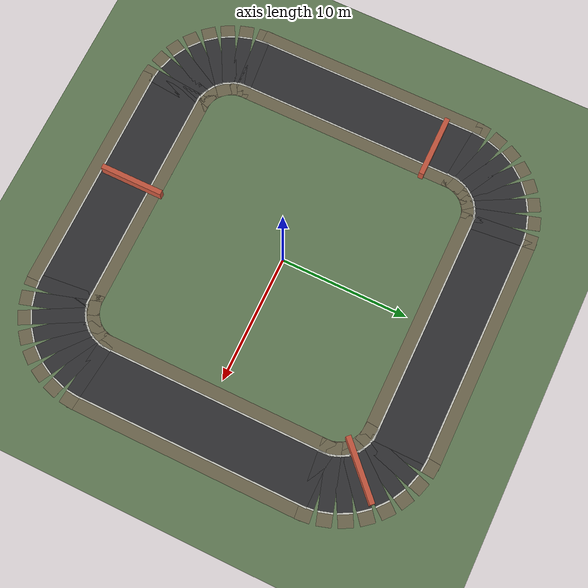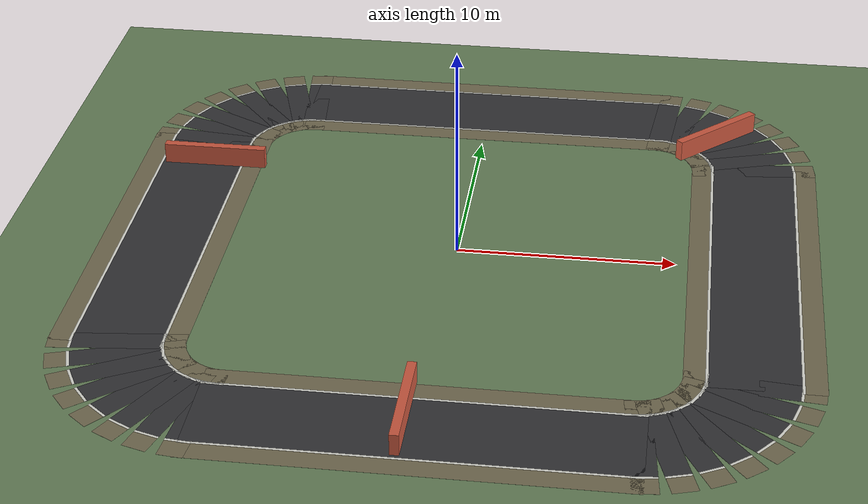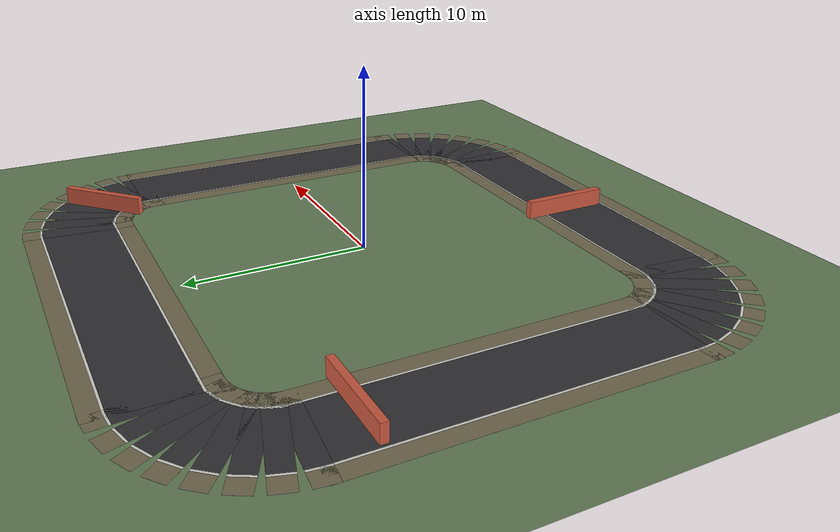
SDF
<?xml version="1.0" ?>
<sdf version="1.9">
  <world name="patrol_road_obstacles">

    <physics name="1ms" type="ignored">
      <max_step_size>0.001</max_step_size>
      <real_time_factor>1.0</real_time_factor>
    </physics>

    <plugin filename="gz-sim-physics-system"
            name="gz::sim::systems::Physics"/>
    <plugin filename="gz-sim-user-commands-system"
            name="gz::sim::systems::UserCommands"/>
    <plugin filename="gz-sim-scene-broadcaster-system"
            name="gz::sim::systems::SceneBroadcaster"/>
    <!-- Renders the gpu_lidar; needs a GL 3.3 context (llvmpipe is enough). -->
    <plugin filename="gz-sim-sensors-system"
            name="gz::sim::systems::Sensors">
      <render_engine>ogre2</render_engine>
    </plugin>
    <plugin filename="gz-sim-imu-system"
            name="gz::sim::systems::Imu"/>
    <plugin filename="gz-sim-navsat-system"
            name="gz::sim::systems::NavSat"/>

    <!-- Datum for the simulated GNSS. Matches patrol_yard.sdf, and is the
         value to pin navsat_transform's `datum` to for sim runs. -->
    <spherical_coordinates>
      <surface_model>EARTH_WGS84</surface_model>
      <world_frame_orientation>ENU</world_frame_orientation>
      <latitude_deg>-41.286460</latitude_deg>
      <longitude_deg>174.776236</longitude_deg>
      <elevation>10.0</elevation>
    </spherical_coordinates>

    <scene>
      <ambient>0.6 0.6 0.6 1</ambient>
      <background>0.6 0.75 0.9 1</background>
      <grid>false</grid>
    </scene>

    <light type="directional" name="sun">
      <cast_shadows>true</cast_shadows>
      <pose>0 0 10 0 0 0</pose>
      <diffuse>0.9 0.9 0.9 1</diffuse>
      <specular>0.2 0.2 0.2 1</specular>
      <direction>-0.5 0.2 -0.9</direction>
    </light>

    <model name="ground_plane">
      <static>true</static>
      <link name="link">
        <collision name="collision">
          <geometry>
            <plane>
              <normal>0 0 1</normal>
              <size>200 200</size>
            </plane>
          </geometry>
          <surface>
            <friction>
              <ode>
                <mu>1.0</mu>
                <mu2>1.0</mu2>
              </ode>
            </friction>
          </surface>
        </collision>
        <visual name="visual">
          <geometry>
            <plane>
              <normal>0 0 1</normal>
              <size>200 200</size>
            </plane>
          </geometry>
          <material>
            <ambient>0.35 0.4 0.3 1</ambient>
            <diffuse>0.4 0.5 0.35 1</diffuse>
          </material>
        </visual>
      </link>
    </model>

    <!-- Painted road surface: visual only, no collision. -->
    <model name="patrol_road">
      <static>true</static>
      <link name="surface">
        <visual name="lane_000">
          <pose>0.0000 -13.5730 0.0050 0 0 0.000000</pose>
          <geometry><box><size>18.5677 4.0000 0.002</size></box></geometry>
          <material>
            <ambient>0.20 0.20 0.21 1</ambient>
            <diffuse>0.20 0.20 0.21 1</diffuse>
          </material>
        </visual>
        <visual name="lane_001">
          <pose>9.0631 -13.5489 0.0050 0 0 0.098175</pose>
          <geometry><box><size>1.1103 4.0000 0.002</size></box></geometry>
          <material>
            <ambient>0.20 0.20 0.21 1</ambient>
            <diffuse>0.20 0.20 0.21 1</diffuse>
          </material>
        </visual>
        <visual name="lane_002">
          <pose>10.0244 -13.3577 0.0050 0 0 0.294524</pose>
          <geometry><box><size>1.1103 4.0000 0.002</size></box></geometry>
          <material>
            <ambient>0.20 0.20 0.21 1</ambient>
            <diffuse>0.20 0.20 0.21 1</diffuse>
          </material>
        </visual>
        <visual name="lane_003">
          <pose>10.9300 -12.9826 0.0050 0 0 0.490874</pose>
          <geometry><box><size>1.1103 4.0000 0.002</size></box></geometry>
          <material>
            <ambient>0.20 0.20 0.21 1</ambient>
            <diffuse>0.20 0.20 0.21 1</diffuse>
          </material>
        </visual>
        <visual name="lane_004">
          <pose>11.7450 -12.4381 0.0050 0 0 0.687223</pose>
          <geometry><box><size>1.1103 4.0000 0.002</size></box></geometry>
          <material>
            <ambient>0.20 0.20 0.21 1</ambient>
            <diffuse>0.20 0.20 0.21 1</diffuse>
          </material>
        </visual>
        <visual name="lane_005">
          <pose>12.4381 -11.7450 0.0050 0 0 0.883573</pose>
          <geometry><box><size>1.1103 4.0000 0.002</size></box></geometry>
          <material>
            <ambient>0.20 0.20 0.21 1</ambient>
            <diffuse>0.20 0.20 0.21 1</diffuse>
          </material>
        </visual>
        <visual name="lane_006">
          <pose>12.9826 -10.9300 0.0050 0 0 1.079922</pose>
          <geometry><box><size>1.1103 4.0000 0.002</size></box></geometry>
          <material>
            <ambient>0.20 0.20 0.21 1</ambient>
            <diffuse>0.20 0.20 0.21 1</diffuse>
          </material>
        </visual>
        <visual name="lane_007">
          <pose>13.3577 -10.0244 0.0050 0 0 1.276272</pose>
          <geometry><box><size>1.1103 4.0000 0.002</size></box></geometry>
          <material>
            <ambient>0.20 0.20 0.21 1</ambient>
            <diffuse>0.20 0.20 0.21 1</diffuse>
          </material>
        </visual>
        <visual name="lane_008">
          <pose>13.5489 -9.0631 0.0050 0 0 1.472622</pose>
          <geometry><box><size>1.1103 4.0000 0.002</size></box></geometry>
          <material>
            <ambient>0.20 0.20 0.21 1</ambient>
            <diffuse>0.20 0.20 0.21 1</diffuse>
          </material>
        </visual>
        <visual name="lane_009">
          <pose>13.5730 0.0000 0.0050 0 0 1.570796</pose>
          <geometry><box><size>18.5677 4.0000 0.002</size></box></geometry>
          <material>
            <ambient>0.20 0.20 0.21 1</ambient>
            <diffuse>0.20 0.20 0.21 1</diffuse>
          </material>
        </visual>
        <visual name="lane_010">
          <pose>13.5489 9.0631 0.0050 0 0 1.668971</pose>
          <geometry><box><size>1.1103 4.0000 0.002</size></box></geometry>
          <material>
            <ambient>0.20 0.20 0.21 1</ambient>
            <diffuse>0.20 0.20 0.21 1</diffuse>
          </material>
        </visual>
        <visual name="lane_011">
          <pose>13.3577 10.0244 0.0050 0 0 1.865321</pose>
          <geometry><box><size>1.1103 4.0000 0.002</size></box></geometry>
          <material>
            <ambient>0.20 0.20 0.21 1</ambient>
            <diffuse>0.20 0.20 0.21 1</diffuse>
          </material>
        </visual>
        <visual name="lane_012">
          <pose>12.9826 10.9300 0.0050 0 0 2.061670</pose>
          <geometry><box><size>1.1103 4.0000 0.002</size></box></geometry>
          <material>
            <ambient>0.20 0.20 0.21 1</ambient>
            <diffuse>0.20 0.20 0.21 1</diffuse>
          </material>
        </visual>
        <visual name="lane_013">
          <pose>12.4381 11.7450 0.0050 0 0 2.258020</pose>
          <geometry><box><size>1.1103 4.0000 0.002</size></box></geometry>
          <material>
            <ambient>0.20 0.20 0.21 1</ambient>
            <diffuse>0.20 0.20 0.21 1</diffuse>
          </material>
        </visual>
        <visual name="lane_014">
          <pose>11.7450 12.4381 0.0050 0 0 2.454369</pose>
          <geometry><box><size>1.1103 4.0000 0.002</size></box></geometry>
          <material>
            <ambient>0.20 0.20 0.21 1</ambient>
            <diffuse>0.20 0.20 0.21 1</diffuse>
          </material>
        </visual>
        <visual name="lane_015">
          <pose>10.9300 12.9826 0.0050 0 0 2.650719</pose>
          <geometry><box><size>1.1103 4.0000 0.002</size></box></geometry>
          <material>
            <ambient>0.20 0.20 0.21 1</ambient>
            <diffuse>0.20 0.20 0.21 1</diffuse>
          </material>
        </visual>
        <visual name="lane_016">
          <pose>10.0244 13.3577 0.0050 0 0 2.847068</pose>
          <geometry><box><size>1.1103 4.0000 0.002</size></box></geometry>
          <material>
            <ambient>0.20 0.20 0.21 1</ambient>
            <diffuse>0.20 0.20 0.21 1</diffuse>
          </material>
        </visual>
        <visual name="lane_017">
          <pose>9.0631 13.5489 0.0050 0 0 3.043418</pose>
          <geometry><box><size>1.1103 4.0000 0.002</size></box></geometry>
          <material>
            <ambient>0.20 0.20 0.21 1</ambient>
            <diffuse>0.20 0.20 0.21 1</diffuse>
          </material>
        </visual>
        <visual name="lane_018">
          <pose>0.0000 13.5730 0.0050 0 0 3.141593</pose>
          <geometry><box><size>18.5677 4.0000 0.002</size></box></geometry>
          <material>
            <ambient>0.20 0.20 0.21 1</ambient>
            <diffuse>0.20 0.20 0.21 1</diffuse>
          </material>
        </visual>
        <visual name="lane_019">
          <pose>-9.0631 13.5489 0.0050 0 0 -3.043418</pose>
          <geometry><box><size>1.1103 4.0000 0.002</size></box></geometry>
          <material>
            <ambient>0.20 0.20 0.21 1</ambient>
            <diffuse>0.20 0.20 0.21 1</diffuse>
          </material>
        </visual>
        <visual name="lane_020">
          <pose>-10.0244 13.3577 0.0050 0 0 -2.847068</pose>
          <geometry><box><size>1.1103 4.0000 0.002</size></box></geometry>
          <material>
            <ambient>0.20 0.20 0.21 1</ambient>
            <diffuse>0.20 0.20 0.21 1</diffuse>
          </material>
        </visual>
        <visual name="lane_021">
          <pose>-10.9300 12.9826 0.0050 0 0 -2.650719</pose>
          <geometry><box><size>1.1103 4.0000 0.002</size></box></geometry>
          <material>
            <ambient>0.20 0.20 0.21 1</ambient>
            <diffuse>0.20 0.20 0.21 1</diffuse>
          </material>
        </visual>
        <visual name="lane_022">
          <pose>-11.7450 12.4381 0.0050 0 0 -2.454369</pose>
          <geometry><box><size>1.1103 4.0000 0.002</size></box></geometry>
          <material>
            <ambient>0.20 0.20 0.21 1</ambient>
            <diffuse>0.20 0.20 0.21 1</diffuse>
          </material>
        </visual>
        <visual name="lane_023">
          <pose>-12.4381 11.7450 0.0050 0 0 -2.258020</pose>
          <geometry><box><size>1.1103 4.0000 0.002</size></box></geometry>
          <material>
            <ambient>0.20 0.20 0.21 1</ambient>
            <diffuse>0.20 0.20 0.21 1</diffuse>
          </material>
        </visual>
        <visual name="lane_024">
          <pose>-12.9826 10.9300 0.0050 0 0 -2.061670</pose>
          <geometry><box><size>1.1103 4.0000 0.002</size></box></geometry>
          <material>
            <ambient>0.20 0.20 0.21 1</ambient>
            <diffuse>0.20 0.20 0.21 1</diffuse>
          </material>
        </visual>
        <visual name="lane_025">
          <pose>-13.3577 10.0244 0.0050 0 0 -1.865321</pose>
          <geometry><box><size>1.1103 4.0000 0.002</size></box></geometry>
          <material>
            <ambient>0.20 0.20 0.21 1</ambient>
            <diffuse>0.20 0.20 0.21 1</diffuse>
          </material>
        </visual>
        <visual name="lane_026">
          <pose>-13.5489 9.0631 0.0050 0 0 -1.668971</pose>
          <geometry><box><size>1.1103 4.0000 0.002</size></box></geometry>
          <material>
            <ambient>0.20 0.20 0.21 1</ambient>
            <diffuse>0.20 0.20 0.21 1</diffuse>
          </material>
        </visual>
        <visual name="lane_027">
          <pose>-13.5730 0.0000 0.0050 0 0 -1.570796</pose>
          <geometry><box><size>18.5677 4.0000 0.002</size></box></geometry>
          <material>
            <ambient>0.20 0.20 0.21 1</ambient>
            <diffuse>0.20 0.20 0.21 1</diffuse>
          </material>
        </visual>
        <visual name="lane_028">
          <pose>-13.5489 -9.0631 0.0050 0 0 -1.472622</pose>
          <geometry><box><size>1.1103 4.0000 0.002</size></box></geometry>
          <material>
            <ambient>0.20 0.20 0.21 1</ambient>
            <diffuse>0.20 0.20 0.21 1</diffuse>
          </material>
        </visual>
        <visual name="lane_029">
          <pose>-13.3577 -10.0244 0.0050 0 0 -1.276272</pose>
          <geometry><box><size>1.1103 4.0000 0.002</size></box></geometry>
          <material>
            <ambient>0.20 0.20 0.21 1</ambient>
            <diffuse>0.20 0.20 0.21 1</diffuse>
          </material>
        </visual>
        <visual name="lane_030">
          <pose>-12.9826 -10.9300 0.0050 0 0 -1.079922</pose>
          <geometry><box><size>1.1103 4.0000 0.002</size></box></geometry>
          <material>
            <ambient>0.20 0.20 0.21 1</ambient>
            <diffuse>0.20 0.20 0.21 1</diffuse>
          </material>
        </visual>
        <visual name="lane_031">
          <pose>-12.4381 -11.7450 0.0050 0 0 -0.883573</pose>
          <geometry><box><size>1.1103 4.0000 0.002</size></box></geometry>
          <material>
            <ambient>0.20 0.20 0.21 1</ambient>
            <diffuse>0.20 0.20 0.21 1</diffuse>
          </material>
        </visual>
        <visual name="lane_032">
          <pose>-11.7450 -12.4381 0.0050 0 0 -0.687223</pose>
          <geometry><box><size>1.1103 4.0000 0.002</size></box></geometry>
          <material>
            <ambient>0.20 0.20 0.21 1</ambient>
            <diffuse>0.20 0.20 0.21 1</diffuse>
          </material>
        </visual>
        <visual name="lane_033">
          <pose>-10.9300 -12.9826 0.0050 0 0 -0.490874</pose>
          <geometry><box><size>1.1103 4.0000 0.002</size></box></geometry>
          <material>
            <ambient>0.20 0.20 0.21 1</ambient>
            <diffuse>0.20 0.20 0.21 1</diffuse>
          </material>
        </visual>
        <visual name="lane_034">
          <pose>-10.0244 -13.3577 0.0050 0 0 -0.294524</pose>
          <geometry><box><size>1.1103 4.0000 0.002</size></box></geometry>
          <material>
            <ambient>0.20 0.20 0.21 1</ambient>
            <diffuse>0.20 0.20 0.21 1</diffuse>
          </material>
        </visual>
        <visual name="lane_035">
          <pose>-9.0631 -13.5489 0.0050 0 0 -0.098175</pose>
          <geometry><box><size>1.1103 4.0000 0.002</size></box></geometry>
          <material>
            <ambient>0.20 0.20 0.21 1</ambient>
            <diffuse>0.20 0.20 0.21 1</diffuse>
          </material>
        </visual>
        <visual name="shoulder_left_000">
          <pose>0.0000 -11.0730 0.0040 0 0 0.000000</pose>
          <geometry><box><size>18.5677 1.0000 0.002</size></box></geometry>
          <material>
            <ambient>0.45 0.42 0.32 1</ambient>
            <diffuse>0.45 0.42 0.32 1</diffuse>
          </material>
        </visual>
        <visual name="shoulder_left_001">
          <pose>8.8181 -11.0610 0.0040 0 0 0.098175</pose>
          <geometry><box><size>1.1103 1.0000 0.002</size></box></geometry>
          <material>
            <ambient>0.45 0.42 0.32 1</ambient>
            <diffuse>0.45 0.42 0.32 1</diffuse>
          </material>
        </visual>
        <visual name="shoulder_left_002">
          <pose>9.2987 -10.9654 0.0040 0 0 0.294524</pose>
          <geometry><box><size>1.1103 1.0000 0.002</size></box></geometry>
          <material>
            <ambient>0.45 0.42 0.32 1</ambient>
            <diffuse>0.45 0.42 0.32 1</diffuse>
          </material>
        </visual>
        <visual name="shoulder_left_003">
          <pose>9.7515 -10.7778 0.0040 0 0 0.490874</pose>
          <geometry><box><size>1.1103 1.0000 0.002</size></box></geometry>
          <material>
            <ambient>0.45 0.42 0.32 1</ambient>
            <diffuse>0.45 0.42 0.32 1</diffuse>
          </material>
        </visual>
        <visual name="shoulder_left_004">
          <pose>10.1590 -10.5055 0.0040 0 0 0.687223</pose>
          <geometry><box><size>1.1103 1.0000 0.002</size></box></geometry>
          <material>
            <ambient>0.45 0.42 0.32 1</ambient>
            <diffuse>0.45 0.42 0.32 1</diffuse>
          </material>
        </visual>
        <visual name="shoulder_left_005">
          <pose>10.5055 -10.1590 0.0040 0 0 0.883573</pose>
          <geometry><box><size>1.1103 1.0000 0.002</size></box></geometry>
          <material>
            <ambient>0.45 0.42 0.32 1</ambient>
            <diffuse>0.45 0.42 0.32 1</diffuse>
          </material>
        </visual>
        <visual name="shoulder_left_006">
          <pose>10.7778 -9.7515 0.0040 0 0 1.079922</pose>
          <geometry><box><size>1.1103 1.0000 0.002</size></box></geometry>
          <material>
            <ambient>0.45 0.42 0.32 1</ambient>
            <diffuse>0.45 0.42 0.32 1</diffuse>
          </material>
        </visual>
        <visual name="shoulder_left_007">
          <pose>10.9654 -9.2987 0.0040 0 0 1.276272</pose>
          <geometry><box><size>1.1103 1.0000 0.002</size></box></geometry>
          <material>
            <ambient>0.45 0.42 0.32 1</ambient>
            <diffuse>0.45 0.42 0.32 1</diffuse>
          </material>
        </visual>
        <visual name="shoulder_left_008">
          <pose>11.0610 -8.8181 0.0040 0 0 1.472622</pose>
          <geometry><box><size>1.1103 1.0000 0.002</size></box></geometry>
          <material>
            <ambient>0.45 0.42 0.32 1</ambient>
            <diffuse>0.45 0.42 0.32 1</diffuse>
          </material>
        </visual>
        <visual name="shoulder_left_009">
          <pose>11.0730 0.0000 0.0040 0 0 1.570796</pose>
          <geometry><box><size>18.5677 1.0000 0.002</size></box></geometry>
          <material>
            <ambient>0.45 0.42 0.32 1</ambient>
            <diffuse>0.45 0.42 0.32 1</diffuse>
          </material>
        </visual>
        <visual name="shoulder_left_010">
          <pose>11.0610 8.8181 0.0040 0 0 1.668971</pose>
          <geometry><box><size>1.1103 1.0000 0.002</size></box></geometry>
          <material>
            <ambient>0.45 0.42 0.32 1</ambient>
            <diffuse>0.45 0.42 0.32 1</diffuse>
          </material>
        </visual>
        <visual name="shoulder_left_011">
          <pose>10.9654 9.2987 0.0040 0 0 1.865321</pose>
          <geometry><box><size>1.1103 1.0000 0.002</size></box></geometry>
          <material>
            <ambient>0.45 0.42 0.32 1</ambient>
            <diffuse>0.45 0.42 0.32 1</diffuse>
          </material>
        </visual>
        <visual name="shoulder_left_012">
          <pose>10.7778 9.7515 0.0040 0 0 2.061670</pose>
          <geometry><box><size>1.1103 1.0000 0.002</size></box></geometry>
          <material>
            <ambient>0.45 0.42 0.32 1</ambient>
            <diffuse>0.45 0.42 0.32 1</diffuse>
          </material>
        </visual>
        <visual name="shoulder_left_013">
          <pose>10.5055 10.1590 0.0040 0 0 2.258020</pose>
          <geometry><box><size>1.1103 1.0000 0.002</size></box></geometry>
          <material>
            <ambient>0.45 0.42 0.32 1</ambient>
            <diffuse>0.45 0.42 0.32 1</diffuse>
          </material>
        </visual>
        <visual name="shoulder_left_014">
          <pose>10.1590 10.5055 0.0040 0 0 2.454369</pose>
          <geometry><box><size>1.1103 1.0000 0.002</size></box></geometry>
          <material>
            <ambient>0.45 0.42 0.32 1</ambient>
            <diffuse>0.45 0.42 0.32 1</diffuse>
          </material>
        </visual>
        <visual name="shoulder_left_015">
          <pose>9.7515 10.7778 0.0040 0 0 2.650719</pose>
          <geometry><box><size>1.1103 1.0000 0.002</size></box></geometry>
          <material>
            <ambient>0.45 0.42 0.32 1</ambient>
            <diffuse>0.45 0.42 0.32 1</diffuse>
          </material>
        </visual>
        <visual name="shoulder_left_016">
          <pose>9.2987 10.9654 0.0040 0 0 2.847068</pose>
          <geometry><box><size>1.1103 1.0000 0.002</size></box></geometry>
          <material>
            <ambient>0.45 0.42 0.32 1</ambient>
            <diffuse>0.45 0.42 0.32 1</diffuse>
          </material>
        </visual>
        <visual name="shoulder_left_017">
          <pose>8.8181 11.0610 0.0040 0 0 3.043418</pose>
          <geometry><box><size>1.1103 1.0000 0.002</size></box></geometry>
          <material>
            <ambient>0.45 0.42 0.32 1</ambient>
            <diffuse>0.45 0.42 0.32 1</diffuse>
          </material>
        </visual>
        <visual name="shoulder_left_018">
          <pose>-0.0000 11.0730 0.0040 0 0 3.141593</pose>
          <geometry><box><size>18.5677 1.0000 0.002</size></box></geometry>
          <material>
            <ambient>0.45 0.42 0.32 1</ambient>
            <diffuse>0.45 0.42 0.32 1</diffuse>
          </material>
        </visual>
        <visual name="shoulder_left_019">
          <pose>-8.8181 11.0610 0.0040 0 0 -3.043418</pose>
          <geometry><box><size>1.1103 1.0000 0.002</size></box></geometry>
          <material>
            <ambient>0.45 0.42 0.32 1</ambient>
            <diffuse>0.45 0.42 0.32 1</diffuse>
          </material>
        </visual>
        <visual name="shoulder_left_020">
          <pose>-9.2987 10.9654 0.0040 0 0 -2.847068</pose>
          <geometry><box><size>1.1103 1.0000 0.002</size></box></geometry>
          <material>
            <ambient>0.45 0.42 0.32 1</ambient>
            <diffuse>0.45 0.42 0.32 1</diffuse>
          </material>
        </visual>
        <visual name="shoulder_left_021">
          <pose>-9.7515 10.7778 0.0040 0 0 -2.650719</pose>
          <geometry><box><size>1.1103 1.0000 0.002</size></box></geometry>
          <material>
            <ambient>0.45 0.42 0.32 1</ambient>
            <diffuse>0.45 0.42 0.32 1</diffuse>
          </material>
        </visual>
        <visual name="shoulder_left_022">
          <pose>-10.1590 10.5055 0.0040 0 0 -2.454369</pose>
          <geometry><box><size>1.1103 1.0000 0.002</size></box></geometry>
          <material>
            <ambient>0.45 0.42 0.32 1</ambient>
            <diffuse>0.45 0.42 0.32 1</diffuse>
          </material>
        </visual>
        <visual name="shoulder_left_023">
          <pose>-10.5055 10.1590 0.0040 0 0 -2.258020</pose>
          <geometry><box><size>1.1103 1.0000 0.002</size></box></geometry>
          <material>
            <ambient>0.45 0.42 0.32 1</ambient>
            <diffuse>0.45 0.42 0.32 1</diffuse>
          </material>
        </visual>
        <visual name="shoulder_left_024">
          <pose>-10.7778 9.7515 0.0040 0 0 -2.061670</pose>
          <geometry><box><size>1.1103 1.0000 0.002</size></box></geometry>
          <material>
            <ambient>0.45 0.42 0.32 1</ambient>
            <diffuse>0.45 0.42 0.32 1</diffuse>
          </material>
        </visual>
        <visual name="shoulder_left_025">
          <pose>-10.9654 9.2987 0.0040 0 0 -1.865321</pose>
          <geometry><box><size>1.1103 1.0000 0.002</size></box></geometry>
          <material>
            <ambient>0.45 0.42 0.32 1</ambient>
            <diffuse>0.45 0.42 0.32 1</diffuse>
          </material>
        </visual>
        <visual name="shoulder_left_026">
          <pose>-11.0610 8.8181 0.0040 0 0 -1.668971</pose>
          <geometry><box><size>1.1103 1.0000 0.002</size></box></geometry>
          <material>
            <ambient>0.45 0.42 0.32 1</ambient>
            <diffuse>0.45 0.42 0.32 1</diffuse>
          </material>
        </visual>
        <visual name="shoulder_left_027">
          <pose>-11.0730 0.0000 0.0040 0 0 -1.570796</pose>
          <geometry><box><size>18.5677 1.0000 0.002</size></box></geometry>
          <material>
            <ambient>0.45 0.42 0.32 1</ambient>
            <diffuse>0.45 0.42 0.32 1</diffuse>
          </material>
        </visual>
        <visual name="shoulder_left_028">
          <pose>-11.0610 -8.8181 0.0040 0 0 -1.472622</pose>
          <geometry><box><size>1.1103 1.0000 0.002</size></box></geometry>
          <material>
            <ambient>0.45 0.42 0.32 1</ambient>
            <diffuse>0.45 0.42 0.32 1</diffuse>
          </material>
        </visual>
        <visual name="shoulder_left_029">
          <pose>-10.9654 -9.2987 0.0040 0 0 -1.276272</pose>
          <geometry><box><size>1.1103 1.0000 0.002</size></box></geometry>
          <material>
            <ambient>0.45 0.42 0.32 1</ambient>
            <diffuse>0.45 0.42 0.32 1</diffuse>
          </material>
        </visual>
        <visual name="shoulder_left_030">
          <pose>-10.7778 -9.7515 0.0040 0 0 -1.079922</pose>
          <geometry><box><size>1.1103 1.0000 0.002</size></box></geometry>
          <material>
            <ambient>0.45 0.42 0.32 1</ambient>
            <diffuse>0.45 0.42 0.32 1</diffuse>
          </material>
        </visual>
        <visual name="shoulder_left_031">
          <pose>-10.5055 -10.1590 0.0040 0 0 -0.883573</pose>
          <geometry><box><size>1.1103 1.0000 0.002</size></box></geometry>
          <material>
            <ambient>0.45 0.42 0.32 1</ambient>
            <diffuse>0.45 0.42 0.32 1</diffuse>
          </material>
        </visual>
        <visual name="shoulder_left_032">
          <pose>-10.1590 -10.5055 0.0040 0 0 -0.687223</pose>
          <geometry><box><size>1.1103 1.0000 0.002</size></box></geometry>
          <material>
            <ambient>0.45 0.42 0.32 1</ambient>
            <diffuse>0.45 0.42 0.32 1</diffuse>
          </material>
        </visual>
        <visual name="shoulder_left_033">
          <pose>-9.7515 -10.7778 0.0040 0 0 -0.490874</pose>
          <geometry><box><size>1.1103 1.0000 0.002</size></box></geometry>
          <material>
            <ambient>0.45 0.42 0.32 1</ambient>
            <diffuse>0.45 0.42 0.32 1</diffuse>
          </material>
        </visual>
        <visual name="shoulder_left_034">
          <pose>-9.2987 -10.9654 0.0040 0 0 -0.294524</pose>
          <geometry><box><size>1.1103 1.0000 0.002</size></box></geometry>
          <material>
            <ambient>0.45 0.42 0.32 1</ambient>
            <diffuse>0.45 0.42 0.32 1</diffuse>
          </material>
        </visual>
        <visual name="shoulder_left_035">
          <pose>-8.8181 -11.0610 0.0040 0 0 -0.098175</pose>
          <geometry><box><size>1.1103 1.0000 0.002</size></box></geometry>
          <material>
            <ambient>0.45 0.42 0.32 1</ambient>
            <diffuse>0.45 0.42 0.32 1</diffuse>
          </material>
        </visual>
        <visual name="shoulder_right_000">
          <pose>0.0000 -16.0730 0.0040 0 0 0.000000</pose>
          <geometry><box><size>18.5677 1.0000 0.002</size></box></geometry>
          <material>
            <ambient>0.45 0.42 0.32 1</ambient>
            <diffuse>0.45 0.42 0.32 1</diffuse>
          </material>
        </visual>
        <visual name="shoulder_right_001">
          <pose>9.3081 -16.0369 0.0040 0 0 0.098175</pose>
          <geometry><box><size>1.1103 1.0000 0.002</size></box></geometry>
          <material>
            <ambient>0.45 0.42 0.32 1</ambient>
            <diffuse>0.45 0.42 0.32 1</diffuse>
          </material>
        </visual>
        <visual name="shoulder_right_002">
          <pose>10.7501 -15.7501 0.0040 0 0 0.294524</pose>
          <geometry><box><size>1.1103 1.0000 0.002</size></box></geometry>
          <material>
            <ambient>0.45 0.42 0.32 1</ambient>
            <diffuse>0.45 0.42 0.32 1</diffuse>
          </material>
        </visual>
        <visual name="shoulder_right_003">
          <pose>12.1085 -15.1874 0.0040 0 0 0.490874</pose>
          <geometry><box><size>1.1103 1.0000 0.002</size></box></geometry>
          <material>
            <ambient>0.45 0.42 0.32 1</ambient>
            <diffuse>0.45 0.42 0.32 1</diffuse>
          </material>
        </visual>
        <visual name="shoulder_right_004">
          <pose>13.3310 -14.3706 0.0040 0 0 0.687223</pose>
          <geometry><box><size>1.1103 1.0000 0.002</size></box></geometry>
          <material>
            <ambient>0.45 0.42 0.32 1</ambient>
            <diffuse>0.45 0.42 0.32 1</diffuse>
          </material>
        </visual>
        <visual name="shoulder_right_005">
          <pose>14.3706 -13.3310 0.0040 0 0 0.883573</pose>
          <geometry><box><size>1.1103 1.0000 0.002</size></box></geometry>
          <material>
            <ambient>0.45 0.42 0.32 1</ambient>
            <diffuse>0.45 0.42 0.32 1</diffuse>
          </material>
        </visual>
        <visual name="shoulder_right_006">
          <pose>15.1874 -12.1085 0.0040 0 0 1.079922</pose>
          <geometry><box><size>1.1103 1.0000 0.002</size></box></geometry>
          <material>
            <ambient>0.45 0.42 0.32 1</ambient>
            <diffuse>0.45 0.42 0.32 1</diffuse>
          </material>
        </visual>
        <visual name="shoulder_right_007">
          <pose>15.7501 -10.7501 0.0040 0 0 1.276272</pose>
          <geometry><box><size>1.1103 1.0000 0.002</size></box></geometry>
          <material>
            <ambient>0.45 0.42 0.32 1</ambient>
            <diffuse>0.45 0.42 0.32 1</diffuse>
          </material>
        </visual>
        <visual name="shoulder_right_008">
          <pose>16.0369 -9.3081 0.0040 0 0 1.472622</pose>
          <geometry><box><size>1.1103 1.0000 0.002</size></box></geometry>
          <material>
            <ambient>0.45 0.42 0.32 1</ambient>
            <diffuse>0.45 0.42 0.32 1</diffuse>
          </material>
        </visual>
        <visual name="shoulder_right_009">
          <pose>16.0730 -0.0000 0.0040 0 0 1.570796</pose>
          <geometry><box><size>18.5677 1.0000 0.002</size></box></geometry>
          <material>
            <ambient>0.45 0.42 0.32 1</ambient>
            <diffuse>0.45 0.42 0.32 1</diffuse>
          </material>
        </visual>
        <visual name="shoulder_right_010">
          <pose>16.0369 9.3081 0.0040 0 0 1.668971</pose>
          <geometry><box><size>1.1103 1.0000 0.002</size></box></geometry>
          <material>
            <ambient>0.45 0.42 0.32 1</ambient>
            <diffuse>0.45 0.42 0.32 1</diffuse>
          </material>
        </visual>
        <visual name="shoulder_right_011">
          <pose>15.7501 10.7501 0.0040 0 0 1.865321</pose>
          <geometry><box><size>1.1103 1.0000 0.002</size></box></geometry>
          <material>
            <ambient>0.45 0.42 0.32 1</ambient>
            <diffuse>0.45 0.42 0.32 1</diffuse>
          </material>
        </visual>
        <visual name="shoulder_right_012">
          <pose>15.1874 12.1085 0.0040 0 0 2.061670</pose>
          <geometry><box><size>1.1103 1.0000 0.002</size></box></geometry>
          <material>
            <ambient>0.45 0.42 0.32 1</ambient>
            <diffuse>0.45 0.42 0.32 1</diffuse>
          </material>
        </visual>
        <visual name="shoulder_right_013">
          <pose>14.3706 13.3310 0.0040 0 0 2.258020</pose>
          <geometry><box><size>1.1103 1.0000 0.002</size></box></geometry>
          <material>
            <ambient>0.45 0.42 0.32 1</ambient>
            <diffuse>0.45 0.42 0.32 1</diffuse>
          </material>
        </visual>
        <visual name="shoulder_right_014">
          <pose>13.3310 14.3706 0.0040 0 0 2.454369</pose>
          <geometry><box><size>1.1103 1.0000 0.002</size></box></geometry>
          <material>
            <ambient>0.45 0.42 0.32 1</ambient>
            <diffuse>0.45 0.42 0.32 1</diffuse>
          </material>
        </visual>
        <visual name="shoulder_right_015">
          <pose>12.1085 15.1874 0.0040 0 0 2.650719</pose>
          <geometry><box><size>1.1103 1.0000 0.002</size></box></geometry>
          <material>
            <ambient>0.45 0.42 0.32 1</ambient>
            <diffuse>0.45 0.42 0.32 1</diffuse>
          </material>
        </visual>
        <visual name="shoulder_right_016">
          <pose>10.7501 15.7501 0.0040 0 0 2.847068</pose>
          <geometry><box><size>1.1103 1.0000 0.002</size></box></geometry>
          <material>
            <ambient>0.45 0.42 0.32 1</ambient>
            <diffuse>0.45 0.42 0.32 1</diffuse>
          </material>
        </visual>
        <visual name="shoulder_right_017">
          <pose>9.3081 16.0369 0.0040 0 0 3.043418</pose>
          <geometry><box><size>1.1103 1.0000 0.002</size></box></geometry>
          <material>
            <ambient>0.45 0.42 0.32 1</ambient>
            <diffuse>0.45 0.42 0.32 1</diffuse>
          </material>
        </visual>
        <visual name="shoulder_right_018">
          <pose>0.0000 16.0730 0.0040 0 0 3.141593</pose>
          <geometry><box><size>18.5677 1.0000 0.002</size></box></geometry>
          <material>
            <ambient>0.45 0.42 0.32 1</ambient>
            <diffuse>0.45 0.42 0.32 1</diffuse>
          </material>
        </visual>
        <visual name="shoulder_right_019">
          <pose>-9.3081 16.0369 0.0040 0 0 -3.043418</pose>
          <geometry><box><size>1.1103 1.0000 0.002</size></box></geometry>
          <material>
            <ambient>0.45 0.42 0.32 1</ambient>
            <diffuse>0.45 0.42 0.32 1</diffuse>
          </material>
        </visual>
        <visual name="shoulder_right_020">
          <pose>-10.7501 15.7501 0.0040 0 0 -2.847068</pose>
          <geometry><box><size>1.1103 1.0000 0.002</size></box></geometry>
          <material>
            <ambient>0.45 0.42 0.32 1</ambient>
            <diffuse>0.45 0.42 0.32 1</diffuse>
          </material>
        </visual>
        <visual name="shoulder_right_021">
          <pose>-12.1085 15.1874 0.0040 0 0 -2.650719</pose>
          <geometry><box><size>1.1103 1.0000 0.002</size></box></geometry>
          <material>
            <ambient>0.45 0.42 0.32 1</ambient>
            <diffuse>0.45 0.42 0.32 1</diffuse>
          </material>
        </visual>
        <visual name="shoulder_right_022">
          <pose>-13.3310 14.3706 0.0040 0 0 -2.454369</pose>
          <geometry><box><size>1.1103 1.0000 0.002</size></box></geometry>
          <material>
            <ambient>0.45 0.42 0.32 1</ambient>
            <diffuse>0.45 0.42 0.32 1</diffuse>
          </material>
        </visual>
        <visual name="shoulder_right_023">
          <pose>-14.3706 13.3310 0.0040 0 0 -2.258020</pose>
          <geometry><box><size>1.1103 1.0000 0.002</size></box></geometry>
          <material>
            <ambient>0.45 0.42 0.32 1</ambient>
            <diffuse>0.45 0.42 0.32 1</diffuse>
          </material>
        </visual>
        <visual name="shoulder_right_024">
          <pose>-15.1874 12.1085 0.0040 0 0 -2.061670</pose>
          <geometry><box><size>1.1103 1.0000 0.002</size></box></geometry>
          <material>
            <ambient>0.45 0.42 0.32 1</ambient>
            <diffuse>0.45 0.42 0.32 1</diffuse>
          </material>
        </visual>
        <visual name="shoulder_right_025">
          <pose>-15.7501 10.7501 0.0040 0 0 -1.865321</pose>
          <geometry><box><size>1.1103 1.0000 0.002</size></box></geometry>
          <material>
            <ambient>0.45 0.42 0.32 1</ambient>
            <diffuse>0.45 0.42 0.32 1</diffuse>
          </material>
        </visual>
        <visual name="shoulder_right_026">
          <pose>-16.0369 9.3081 0.0040 0 0 -1.668971</pose>
          <geometry><box><size>1.1103 1.0000 0.002</size></box></geometry>
          <material>
            <ambient>0.45 0.42 0.32 1</ambient>
            <diffuse>0.45 0.42 0.32 1</diffuse>
          </material>
        </visual>
        <visual name="shoulder_right_027">
          <pose>-16.0730 -0.0000 0.0040 0 0 -1.570796</pose>
          <geometry><box><size>18.5677 1.0000 0.002</size></box></geometry>
          <material>
            <ambient>0.45 0.42 0.32 1</ambient>
            <diffuse>0.45 0.42 0.32 1</diffuse>
          </material>
        </visual>
        <visual name="shoulder_right_028">
          <pose>-16.0369 -9.3081 0.0040 0 0 -1.472622</pose>
          <geometry><box><size>1.1103 1.0000 0.002</size></box></geometry>
          <material>
            <ambient>0.45 0.42 0.32 1</ambient>
            <diffuse>0.45 0.42 0.32 1</diffuse>
          </material>
        </visual>
        <visual name="shoulder_right_029">
          <pose>-15.7501 -10.7501 0.0040 0 0 -1.276272</pose>
          <geometry><box><size>1.1103 1.0000 0.002</size></box></geometry>
          <material>
            <ambient>0.45 0.42 0.32 1</ambient>
            <diffuse>0.45 0.42 0.32 1</diffuse>
          </material>
        </visual>
        <visual name="shoulder_right_030">
          <pose>-15.1874 -12.1085 0.0040 0 0 -1.079922</pose>
          <geometry><box><size>1.1103 1.0000 0.002</size></box></geometry>
          <material>
            <ambient>0.45 0.42 0.32 1</ambient>
            <diffuse>0.45 0.42 0.32 1</diffuse>
          </material>
        </visual>
        <visual name="shoulder_right_031">
          <pose>-14.3706 -13.3310 0.0040 0 0 -0.883573</pose>
          <geometry><box><size>1.1103 1.0000 0.002</size></box></geometry>
          <material>
            <ambient>0.45 0.42 0.32 1</ambient>
            <diffuse>0.45 0.42 0.32 1</diffuse>
          </material>
        </visual>
        <visual name="shoulder_right_032">
          <pose>-13.3310 -14.3706 0.0040 0 0 -0.687223</pose>
          <geometry><box><size>1.1103 1.0000 0.002</size></box></geometry>
          <material>
            <ambient>0.45 0.42 0.32 1</ambient>
            <diffuse>0.45 0.42 0.32 1</diffuse>
          </material>
        </visual>
        <visual name="shoulder_right_033">
          <pose>-12.1085 -15.1874 0.0040 0 0 -0.490874</pose>
          <geometry><box><size>1.1103 1.0000 0.002</size></box></geometry>
          <material>
            <ambient>0.45 0.42 0.32 1</ambient>
            <diffuse>0.45 0.42 0.32 1</diffuse>
          </material>
        </visual>
        <visual name="shoulder_right_034">
          <pose>-10.7501 -15.7501 0.0040 0 0 -0.294524</pose>
          <geometry><box><size>1.1103 1.0000 0.002</size></box></geometry>
          <material>
            <ambient>0.45 0.42 0.32 1</ambient>
            <diffuse>0.45 0.42 0.32 1</diffuse>
          </material>
        </visual>
        <visual name="shoulder_right_035">
          <pose>-9.3081 -16.0369 0.0040 0 0 -0.098175</pose>
          <geometry><box><size>1.1103 1.0000 0.002</size></box></geometry>
          <material>
            <ambient>0.45 0.42 0.32 1</ambient>
            <diffuse>0.45 0.42 0.32 1</diffuse>
          </material>
        </visual>
        <visual name="edge_line_left_000">
          <pose>0.0000 -11.5730 0.0100 0 0 0.000000</pose>
          <geometry><box><size>18.5677 0.1200 0.002</size></box></geometry>
          <material>
            <ambient>0.85 0.85 0.82 1</ambient>
            <diffuse>0.85 0.85 0.82 1</diffuse>
          </material>
        </visual>
        <visual name="edge_line_left_001">
          <pose>8.8671 -11.5586 0.0100 0 0 0.098175</pose>
          <geometry><box><size>1.1103 0.1200 0.002</size></box></geometry>
          <material>
            <ambient>0.85 0.85 0.82 1</ambient>
            <diffuse>0.85 0.85 0.82 1</diffuse>
          </material>
        </visual>
        <visual name="edge_line_left_002">
          <pose>9.4439 -11.4438 0.0100 0 0 0.294524</pose>
          <geometry><box><size>1.1103 0.1200 0.002</size></box></geometry>
          <material>
            <ambient>0.85 0.85 0.82 1</ambient>
            <diffuse>0.85 0.85 0.82 1</diffuse>
          </material>
        </visual>
        <visual name="edge_line_left_003">
          <pose>9.9872 -11.2188 0.0100 0 0 0.490874</pose>
          <geometry><box><size>1.1103 0.1200 0.002</size></box></geometry>
          <material>
            <ambient>0.85 0.85 0.82 1</ambient>
            <diffuse>0.85 0.85 0.82 1</diffuse>
          </material>
        </visual>
        <visual name="edge_line_left_004">
          <pose>10.4762 -10.8920 0.0100 0 0 0.687223</pose>
          <geometry><box><size>1.1103 0.1200 0.002</size></box></geometry>
          <material>
            <ambient>0.85 0.85 0.82 1</ambient>
            <diffuse>0.85 0.85 0.82 1</diffuse>
          </material>
        </visual>
        <visual name="edge_line_left_005">
          <pose>10.8920 -10.4762 0.0100 0 0 0.883573</pose>
          <geometry><box><size>1.1103 0.1200 0.002</size></box></geometry>
          <material>
            <ambient>0.85 0.85 0.82 1</ambient>
            <diffuse>0.85 0.85 0.82 1</diffuse>
          </material>
        </visual>
        <visual name="edge_line_left_006">
          <pose>11.2188 -9.9872 0.0100 0 0 1.079922</pose>
          <geometry><box><size>1.1103 0.1200 0.002</size></box></geometry>
          <material>
            <ambient>0.85 0.85 0.82 1</ambient>
            <diffuse>0.85 0.85 0.82 1</diffuse>
          </material>
        </visual>
        <visual name="edge_line_left_007">
          <pose>11.4438 -9.4439 0.0100 0 0 1.276272</pose>
          <geometry><box><size>1.1103 0.1200 0.002</size></box></geometry>
          <material>
            <ambient>0.85 0.85 0.82 1</ambient>
            <diffuse>0.85 0.85 0.82 1</diffuse>
          </material>
        </visual>
        <visual name="edge_line_left_008">
          <pose>11.5586 -8.8671 0.0100 0 0 1.472622</pose>
          <geometry><box><size>1.1103 0.1200 0.002</size></box></geometry>
          <material>
            <ambient>0.85 0.85 0.82 1</ambient>
            <diffuse>0.85 0.85 0.82 1</diffuse>
          </material>
        </visual>
        <visual name="edge_line_left_009">
          <pose>11.5730 0.0000 0.0100 0 0 1.570796</pose>
          <geometry><box><size>18.5677 0.1200 0.002</size></box></geometry>
          <material>
            <ambient>0.85 0.85 0.82 1</ambient>
            <diffuse>0.85 0.85 0.82 1</diffuse>
          </material>
        </visual>
        <visual name="edge_line_left_010">
          <pose>11.5586 8.8671 0.0100 0 0 1.668971</pose>
          <geometry><box><size>1.1103 0.1200 0.002</size></box></geometry>
          <material>
            <ambient>0.85 0.85 0.82 1</ambient>
            <diffuse>0.85 0.85 0.82 1</diffuse>
          </material>
        </visual>
        <visual name="edge_line_left_011">
          <pose>11.4438 9.4439 0.0100 0 0 1.865321</pose>
          <geometry><box><size>1.1103 0.1200 0.002</size></box></geometry>
          <material>
            <ambient>0.85 0.85 0.82 1</ambient>
            <diffuse>0.85 0.85 0.82 1</diffuse>
          </material>
        </visual>
        <visual name="edge_line_left_012">
          <pose>11.2188 9.9872 0.0100 0 0 2.061670</pose>
          <geometry><box><size>1.1103 0.1200 0.002</size></box></geometry>
          <material>
            <ambient>0.85 0.85 0.82 1</ambient>
            <diffuse>0.85 0.85 0.82 1</diffuse>
          </material>
        </visual>
        <visual name="edge_line_left_013">
          <pose>10.8920 10.4762 0.0100 0 0 2.258020</pose>
          <geometry><box><size>1.1103 0.1200 0.002</size></box></geometry>
          <material>
            <ambient>0.85 0.85 0.82 1</ambient>
            <diffuse>0.85 0.85 0.82 1</diffuse>
          </material>
        </visual>
        <visual name="edge_line_left_014">
          <pose>10.4762 10.8920 0.0100 0 0 2.454369</pose>
          <geometry><box><size>1.1103 0.1200 0.002</size></box></geometry>
          <material>
            <ambient>0.85 0.85 0.82 1</ambient>
            <diffuse>0.85 0.85 0.82 1</diffuse>
          </material>
        </visual>
        <visual name="edge_line_left_015">
          <pose>9.9872 11.2188 0.0100 0 0 2.650719</pose>
          <geometry><box><size>1.1103 0.1200 0.002</size></box></geometry>
          <material>
            <ambient>0.85 0.85 0.82 1</ambient>
            <diffuse>0.85 0.85 0.82 1</diffuse>
          </material>
        </visual>
        <visual name="edge_line_left_016">
          <pose>9.4439 11.4438 0.0100 0 0 2.847068</pose>
          <geometry><box><size>1.1103 0.1200 0.002</size></box></geometry>
          <material>
            <ambient>0.85 0.85 0.82 1</ambient>
            <diffuse>0.85 0.85 0.82 1</diffuse>
          </material>
        </visual>
        <visual name="edge_line_left_017">
          <pose>8.8671 11.5586 0.0100 0 0 3.043418</pose>
          <geometry><box><size>1.1103 0.1200 0.002</size></box></geometry>
          <material>
            <ambient>0.85 0.85 0.82 1</ambient>
            <diffuse>0.85 0.85 0.82 1</diffuse>
          </material>
        </visual>
        <visual name="edge_line_left_018">
          <pose>-0.0000 11.5730 0.0100 0 0 3.141593</pose>
          <geometry><box><size>18.5677 0.1200 0.002</size></box></geometry>
          <material>
            <ambient>0.85 0.85 0.82 1</ambient>
            <diffuse>0.85 0.85 0.82 1</diffuse>
          </material>
        </visual>
        <visual name="edge_line_left_019">
          <pose>-8.8671 11.5586 0.0100 0 0 -3.043418</pose>
          <geometry><box><size>1.1103 0.1200 0.002</size></box></geometry>
          <material>
            <ambient>0.85 0.85 0.82 1</ambient>
            <diffuse>0.85 0.85 0.82 1</diffuse>
          </material>
        </visual>
        <visual name="edge_line_left_020">
          <pose>-9.4439 11.4438 0.0100 0 0 -2.847068</pose>
          <geometry><box><size>1.1103 0.1200 0.002</size></box></geometry>
          <material>
            <ambient>0.85 0.85 0.82 1</ambient>
            <diffuse>0.85 0.85 0.82 1</diffuse>
          </material>
        </visual>
        <visual name="edge_line_left_021">
          <pose>-9.9872 11.2188 0.0100 0 0 -2.650719</pose>
          <geometry><box><size>1.1103 0.1200 0.002</size></box></geometry>
          <material>
            <ambient>0.85 0.85 0.82 1</ambient>
            <diffuse>0.85 0.85 0.82 1</diffuse>
          </material>
        </visual>
        <visual name="edge_line_left_022">
          <pose>-10.4762 10.8920 0.0100 0 0 -2.454369</pose>
          <geometry><box><size>1.1103 0.1200 0.002</size></box></geometry>
          <material>
            <ambient>0.85 0.85 0.82 1</ambient>
            <diffuse>0.85 0.85 0.82 1</diffuse>
          </material>
        </visual>
        <visual name="edge_line_left_023">
          <pose>-10.8920 10.4762 0.0100 0 0 -2.258020</pose>
          <geometry><box><size>1.1103 0.1200 0.002</size></box></geometry>
          <material>
            <ambient>0.85 0.85 0.82 1</ambient>
            <diffuse>0.85 0.85 0.82 1</diffuse>
          </material>
        </visual>
        <visual name="edge_line_left_024">
          <pose>-11.2188 9.9872 0.0100 0 0 -2.061670</pose>
          <geometry><box><size>1.1103 0.1200 0.002</size></box></geometry>
          <material>
            <ambient>0.85 0.85 0.82 1</ambient>
            <diffuse>0.85 0.85 0.82 1</diffuse>
          </material>
        </visual>
        <visual name="edge_line_left_025">
          <pose>-11.4438 9.4439 0.0100 0 0 -1.865321</pose>
          <geometry><box><size>1.1103 0.1200 0.002</size></box></geometry>
          <material>
            <ambient>0.85 0.85 0.82 1</ambient>
            <diffuse>0.85 0.85 0.82 1</diffuse>
          </material>
        </visual>
        <visual name="edge_line_left_026">
          <pose>-11.5586 8.8671 0.0100 0 0 -1.668971</pose>
          <geometry><box><size>1.1103 0.1200 0.002</size></box></geometry>
          <material>
            <ambient>0.85 0.85 0.82 1</ambient>
            <diffuse>0.85 0.85 0.82 1</diffuse>
          </material>
        </visual>
        <visual name="edge_line_left_027">
          <pose>-11.5730 0.0000 0.0100 0 0 -1.570796</pose>
          <geometry><box><size>18.5677 0.1200 0.002</size></box></geometry>
          <material>
            <ambient>0.85 0.85 0.82 1</ambient>
            <diffuse>0.85 0.85 0.82 1</diffuse>
          </material>
        </visual>
        <visual name="edge_line_left_028">
          <pose>-11.5586 -8.8671 0.0100 0 0 -1.472622</pose>
          <geometry><box><size>1.1103 0.1200 0.002</size></box></geometry>
          <material>
            <ambient>0.85 0.85 0.82 1</ambient>
            <diffuse>0.85 0.85 0.82 1</diffuse>
          </material>
        </visual>
        <visual name="edge_line_left_029">
          <pose>-11.4438 -9.4439 0.0100 0 0 -1.276272</pose>
          <geometry><box><size>1.1103 0.1200 0.002</size></box></geometry>
          <material>
            <ambient>0.85 0.85 0.82 1</ambient>
            <diffuse>0.85 0.85 0.82 1</diffuse>
          </material>
        </visual>
        <visual name="edge_line_left_030">
          <pose>-11.2188 -9.9872 0.0100 0 0 -1.079922</pose>
          <geometry><box><size>1.1103 0.1200 0.002</size></box></geometry>
          <material>
            <ambient>0.85 0.85 0.82 1</ambient>
            <diffuse>0.85 0.85 0.82 1</diffuse>
          </material>
        </visual>
        <visual name="edge_line_left_031">
          <pose>-10.8920 -10.4762 0.0100 0 0 -0.883573</pose>
          <geometry><box><size>1.1103 0.1200 0.002</size></box></geometry>
          <material>
            <ambient>0.85 0.85 0.82 1</ambient>
            <diffuse>0.85 0.85 0.82 1</diffuse>
          </material>
        </visual>
        <visual name="edge_line_left_032">
          <pose>-10.4762 -10.8920 0.0100 0 0 -0.687223</pose>
          <geometry><box><size>1.1103 0.1200 0.002</size></box></geometry>
          <material>
            <ambient>0.85 0.85 0.82 1</ambient>
            <diffuse>0.85 0.85 0.82 1</diffuse>
          </material>
        </visual>
        <visual name="edge_line_left_033">
          <pose>-9.9872 -11.2188 0.0100 0 0 -0.490874</pose>
          <geometry><box><size>1.1103 0.1200 0.002</size></box></geometry>
          <material>
            <ambient>0.85 0.85 0.82 1</ambient>
            <diffuse>0.85 0.85 0.82 1</diffuse>
          </material>
        </visual>
        <visual name="edge_line_left_034">
          <pose>-9.4439 -11.4438 0.0100 0 0 -0.294524</pose>
          <geometry><box><size>1.1103 0.1200 0.002</size></box></geometry>
          <material>
            <ambient>0.85 0.85 0.82 1</ambient>
            <diffuse>0.85 0.85 0.82 1</diffuse>
          </material>
        </visual>
        <visual name="edge_line_left_035">
          <pose>-8.8671 -11.5586 0.0100 0 0 -0.098175</pose>
          <geometry><box><size>1.1103 0.1200 0.002</size></box></geometry>
          <material>
            <ambient>0.85 0.85 0.82 1</ambient>
            <diffuse>0.85 0.85 0.82 1</diffuse>
          </material>
        </visual>
        <visual name="edge_line_right_000">
          <pose>0.0000 -15.5730 0.0100 0 0 0.000000</pose>
          <geometry><box><size>18.5677 0.1200 0.002</size></box></geometry>
          <material>
            <ambient>0.85 0.85 0.82 1</ambient>
            <diffuse>0.85 0.85 0.82 1</diffuse>
          </material>
        </visual>
        <visual name="edge_line_right_001">
          <pose>9.2591 -15.5393 0.0100 0 0 0.098175</pose>
          <geometry><box><size>1.1103 0.1200 0.002</size></box></geometry>
          <material>
            <ambient>0.85 0.85 0.82 1</ambient>
            <diffuse>0.85 0.85 0.82 1</diffuse>
          </material>
        </visual>
        <visual name="edge_line_right_002">
          <pose>10.6050 -15.2716 0.0100 0 0 0.294524</pose>
          <geometry><box><size>1.1103 0.1200 0.002</size></box></geometry>
          <material>
            <ambient>0.85 0.85 0.82 1</ambient>
            <diffuse>0.85 0.85 0.82 1</diffuse>
          </material>
        </visual>
        <visual name="edge_line_right_003">
          <pose>11.8728 -14.7465 0.0100 0 0 0.490874</pose>
          <geometry><box><size>1.1103 0.1200 0.002</size></box></geometry>
          <material>
            <ambient>0.85 0.85 0.82 1</ambient>
            <diffuse>0.85 0.85 0.82 1</diffuse>
          </material>
        </visual>
        <visual name="edge_line_right_004">
          <pose>13.0138 -13.9841 0.0100 0 0 0.687223</pose>
          <geometry><box><size>1.1103 0.1200 0.002</size></box></geometry>
          <material>
            <ambient>0.85 0.85 0.82 1</ambient>
            <diffuse>0.85 0.85 0.82 1</diffuse>
          </material>
        </visual>
        <visual name="edge_line_right_005">
          <pose>13.9841 -13.0138 0.0100 0 0 0.883573</pose>
          <geometry><box><size>1.1103 0.1200 0.002</size></box></geometry>
          <material>
            <ambient>0.85 0.85 0.82 1</ambient>
            <diffuse>0.85 0.85 0.82 1</diffuse>
          </material>
        </visual>
        <visual name="edge_line_right_006">
          <pose>14.7465 -11.8728 0.0100 0 0 1.079922</pose>
          <geometry><box><size>1.1103 0.1200 0.002</size></box></geometry>
          <material>
            <ambient>0.85 0.85 0.82 1</ambient>
            <diffuse>0.85 0.85 0.82 1</diffuse>
          </material>
        </visual>
        <visual name="edge_line_right_007">
          <pose>15.2716 -10.6050 0.0100 0 0 1.276272</pose>
          <geometry><box><size>1.1103 0.1200 0.002</size></box></geometry>
          <material>
            <ambient>0.85 0.85 0.82 1</ambient>
            <diffuse>0.85 0.85 0.82 1</diffuse>
          </material>
        </visual>
        <visual name="edge_line_right_008">
          <pose>15.5393 -9.2591 0.0100 0 0 1.472622</pose>
          <geometry><box><size>1.1103 0.1200 0.002</size></box></geometry>
          <material>
            <ambient>0.85 0.85 0.82 1</ambient>
            <diffuse>0.85 0.85 0.82 1</diffuse>
          </material>
        </visual>
        <visual name="edge_line_right_009">
          <pose>15.5730 -0.0000 0.0100 0 0 1.570796</pose>
          <geometry><box><size>18.5677 0.1200 0.002</size></box></geometry>
          <material>
            <ambient>0.85 0.85 0.82 1</ambient>
            <diffuse>0.85 0.85 0.82 1</diffuse>
          </material>
        </visual>
        <visual name="edge_line_right_010">
          <pose>15.5393 9.2591 0.0100 0 0 1.668971</pose>
          <geometry><box><size>1.1103 0.1200 0.002</size></box></geometry>
          <material>
            <ambient>0.85 0.85 0.82 1</ambient>
            <diffuse>0.85 0.85 0.82 1</diffuse>
          </material>
        </visual>
        <visual name="edge_line_right_011">
          <pose>15.2716 10.6050 0.0100 0 0 1.865321</pose>
          <geometry><box><size>1.1103 0.1200 0.002</size></box></geometry>
          <material>
            <ambient>0.85 0.85 0.82 1</ambient>
            <diffuse>0.85 0.85 0.82 1</diffuse>
          </material>
        </visual>
        <visual name="edge_line_right_012">
          <pose>14.7465 11.8728 0.0100 0 0 2.061670</pose>
          <geometry><box><size>1.1103 0.1200 0.002</size></box></geometry>
          <material>
            <ambient>0.85 0.85 0.82 1</ambient>
            <diffuse>0.85 0.85 0.82 1</diffuse>
          </material>
        </visual>
        <visual name="edge_line_right_013">
          <pose>13.9841 13.0138 0.0100 0 0 2.258020</pose>
          <geometry><box><size>1.1103 0.1200 0.002</size></box></geometry>
          <material>
            <ambient>0.85 0.85 0.82 1</ambient>
            <diffuse>0.85 0.85 0.82 1</diffuse>
          </material>
        </visual>
        <visual name="edge_line_right_014">
          <pose>13.0138 13.9841 0.0100 0 0 2.454369</pose>
          <geometry><box><size>1.1103 0.1200 0.002</size></box></geometry>
          <material>
            <ambient>0.85 0.85 0.82 1</ambient>
            <diffuse>0.85 0.85 0.82 1</diffuse>
          </material>
        </visual>
        <visual name="edge_line_right_015">
          <pose>11.8728 14.7465 0.0100 0 0 2.650719</pose>
          <geometry><box><size>1.1103 0.1200 0.002</size></box></geometry>
          <material>
            <ambient>0.85 0.85 0.82 1</ambient>
            <diffuse>0.85 0.85 0.82 1</diffuse>
          </material>
        </visual>
        <visual name="edge_line_right_016">
          <pose>10.6050 15.2716 0.0100 0 0 2.847068</pose>
          <geometry><box><size>1.1103 0.1200 0.002</size></box></geometry>
          <material>
            <ambient>0.85 0.85 0.82 1</ambient>
            <diffuse>0.85 0.85 0.82 1</diffuse>
          </material>
        </visual>
        <visual name="edge_line_right_017">
          <pose>9.2591 15.5393 0.0100 0 0 3.043418</pose>
          <geometry><box><size>1.1103 0.1200 0.002</size></box></geometry>
          <material>
            <ambient>0.85 0.85 0.82 1</ambient>
            <diffuse>0.85 0.85 0.82 1</diffuse>
          </material>
        </visual>
        <visual name="edge_line_right_018">
          <pose>0.0000 15.5730 0.0100 0 0 3.141593</pose>
          <geometry><box><size>18.5677 0.1200 0.002</size></box></geometry>
          <material>
            <ambient>0.85 0.85 0.82 1</ambient>
            <diffuse>0.85 0.85 0.82 1</diffuse>
          </material>
        </visual>
        <visual name="edge_line_right_019">
          <pose>-9.2591 15.5393 0.0100 0 0 -3.043418</pose>
          <geometry><box><size>1.1103 0.1200 0.002</size></box></geometry>
          <material>
            <ambient>0.85 0.85 0.82 1</ambient>
            <diffuse>0.85 0.85 0.82 1</diffuse>
          </material>
        </visual>
        <visual name="edge_line_right_020">
          <pose>-10.6050 15.2716 0.0100 0 0 -2.847068</pose>
          <geometry><box><size>1.1103 0.1200 0.002</size></box></geometry>
          <material>
            <ambient>0.85 0.85 0.82 1</ambient>
            <diffuse>0.85 0.85 0.82 1</diffuse>
          </material>
        </visual>
        <visual name="edge_line_right_021">
          <pose>-11.8728 14.7465 0.0100 0 0 -2.650719</pose>
          <geometry><box><size>1.1103 0.1200 0.002</size></box></geometry>
          <material>
            <ambient>0.85 0.85 0.82 1</ambient>
            <diffuse>0.85 0.85 0.82 1</diffuse>
          </material>
        </visual>
        <visual name="edge_line_right_022">
          <pose>-13.0138 13.9841 0.0100 0 0 -2.454369</pose>
          <geometry><box><size>1.1103 0.1200 0.002</size></box></geometry>
          <material>
            <ambient>0.85 0.85 0.82 1</ambient>
            <diffuse>0.85 0.85 0.82 1</diffuse>
          </material>
        </visual>
        <visual name="edge_line_right_023">
          <pose>-13.9841 13.0138 0.0100 0 0 -2.258020</pose>
          <geometry><box><size>1.1103 0.1200 0.002</size></box></geometry>
          <material>
            <ambient>0.85 0.85 0.82 1</ambient>
            <diffuse>0.85 0.85 0.82 1</diffuse>
          </material>
        </visual>
        <visual name="edge_line_right_024">
          <pose>-14.7465 11.8728 0.0100 0 0 -2.061670</pose>
          <geometry><box><size>1.1103 0.1200 0.002</size></box></geometry>
          <material>
            <ambient>0.85 0.85 0.82 1</ambient>
            <diffuse>0.85 0.85 0.82 1</diffuse>
          </material>
        </visual>
        <visual name="edge_line_right_025">
          <pose>-15.2716 10.6050 0.0100 0 0 -1.865321</pose>
          <geometry><box><size>1.1103 0.1200 0.002</size></box></geometry>
          <material>
            <ambient>0.85 0.85 0.82 1</ambient>
            <diffuse>0.85 0.85 0.82 1</diffuse>
          </material>
        </visual>
        <visual name="edge_line_right_026">
          <pose>-15.5393 9.2591 0.0100 0 0 -1.668971</pose>
          <geometry><box><size>1.1103 0.1200 0.002</size></box></geometry>
          <material>
            <ambient>0.85 0.85 0.82 1</ambient>
            <diffuse>0.85 0.85 0.82 1</diffuse>
          </material>
        </visual>
        <visual name="edge_line_right_027">
          <pose>-15.5730 -0.0000 0.0100 0 0 -1.570796</pose>
          <geometry><box><size>18.5677 0.1200 0.002</size></box></geometry>
          <material>
            <ambient>0.85 0.85 0.82 1</ambient>
            <diffuse>0.85 0.85 0.82 1</diffuse>
          </material>
        </visual>
        <visual name="edge_line_right_028">
          <pose>-15.5393 -9.2591 0.0100 0 0 -1.472622</pose>
          <geometry><box><size>1.1103 0.1200 0.002</size></box></geometry>
          <material>
            <ambient>0.85 0.85 0.82 1</ambient>
            <diffuse>0.85 0.85 0.82 1</diffuse>
          </material>
        </visual>
        <visual name="edge_line_right_029">
          <pose>-15.2716 -10.6050 0.0100 0 0 -1.276272</pose>
          <geometry><box><size>1.1103 0.1200 0.002</size></box></geometry>
          <material>
            <ambient>0.85 0.85 0.82 1</ambient>
            <diffuse>0.85 0.85 0.82 1</diffuse>
          </material>
        </visual>
        <visual name="edge_line_right_030">
          <pose>-14.7465 -11.8728 0.0100 0 0 -1.079922</pose>
          <geometry><box><size>1.1103 0.1200 0.002</size></box></geometry>
          <material>
            <ambient>0.85 0.85 0.82 1</ambient>
            <diffuse>0.85 0.85 0.82 1</diffuse>
          </material>
        </visual>
        <visual name="edge_line_right_031">
          <pose>-13.9841 -13.0138 0.0100 0 0 -0.883573</pose>
          <geometry><box><size>1.1103 0.1200 0.002</size></box></geometry>
          <material>
            <ambient>0.85 0.85 0.82 1</ambient>
            <diffuse>0.85 0.85 0.82 1</diffuse>
          </material>
        </visual>
        <visual name="edge_line_right_032">
          <pose>-13.0138 -13.9841 0.0100 0 0 -0.687223</pose>
          <geometry><box><size>1.1103 0.1200 0.002</size></box></geometry>
          <material>
            <ambient>0.85 0.85 0.82 1</ambient>
            <diffuse>0.85 0.85 0.82 1</diffuse>
          </material>
        </visual>
        <visual name="edge_line_right_033">
          <pose>-11.8728 -14.7465 0.0100 0 0 -0.490874</pose>
          <geometry><box><size>1.1103 0.1200 0.002</size></box></geometry>
          <material>
            <ambient>0.85 0.85 0.82 1</ambient>
            <diffuse>0.85 0.85 0.82 1</diffuse>
          </material>
        </visual>
        <visual name="edge_line_right_034">
          <pose>-10.6050 -15.2716 0.0100 0 0 -0.294524</pose>
          <geometry><box><size>1.1103 0.1200 0.002</size></box></geometry>
          <material>
            <ambient>0.85 0.85 0.82 1</ambient>
            <diffuse>0.85 0.85 0.82 1</diffuse>
          </material>
        </visual>
        <visual name="edge_line_right_035">
          <pose>-9.2591 -15.5393 0.0100 0 0 -0.098175</pose>
          <geometry><box><size>1.1103 0.1200 0.002</size></box></geometry>
          <material>
            <ambient>0.85 0.85 0.82 1</ambient>
            <diffuse>0.85 0.85 0.82 1</diffuse>
          </material>
        </visual>
      </link>
    </model>

    <!-- Lane barriers. Each spans the lane and the LEFT
         shoulder, leaving a passable gap on the RIGHT shoulder
         only, so a left-side dodge is geometrically
         impossible. -->
    <model name="barrier_1">
      <static>true</static>
      <pose>-0.5730 -12.8730 0.5000 0 0 0.000000</pose>
      <link name="link">
        <collision name="collision">
          <geometry><box><size>0.400 5.000 1.000</size></box></geometry>
        </collision>
        <visual name="visual">
          <geometry><box><size>0.400 5.000 1.000</size></box></geometry>
          <material>
            <ambient>0.7 0.3 0.2 1</ambient>
            <diffuse>0.8 0.35 0.25 1</diffuse>
          </material>
        </visual>
      </link>
    </model>
    <model name="barrier_2">
      <static>true</static>
      <pose>11.6576 11.5688 0.5000 0 0 2.341593</pose>
      <link name="link">
        <collision name="collision">
          <geometry><box><size>0.400 5.000 1.000</size></box></geometry>
        </collision>
        <visual name="visual">
          <geometry><box><size>0.400 5.000 1.000</size></box></geometry>
          <material>
            <ambient>0.7 0.3 0.2 1</ambient>
            <diffuse>0.8 0.35 0.25 1</diffuse>
          </material>
        </visual>
      </link>
    </model>
    <model name="barrier_3">
      <static>true</static>
      <pose>-12.8730 6.5730 0.5000 0 0 -1.570796</pose>
      <link name="link">
        <collision name="collision">
          <geometry><box><size>0.400 5.000 1.000</size></box></geometry>
        </collision>
        <visual name="visual">
          <geometry><box><size>0.400 5.000 1.000</size></box></geometry>
          <material>
            <ambient>0.7 0.3 0.2 1</ambient>
            <diffuse>0.8 0.35 0.25 1</diffuse>
          </material>
        </visual>
      </link>
    </model>

  </world>
</sdf>
